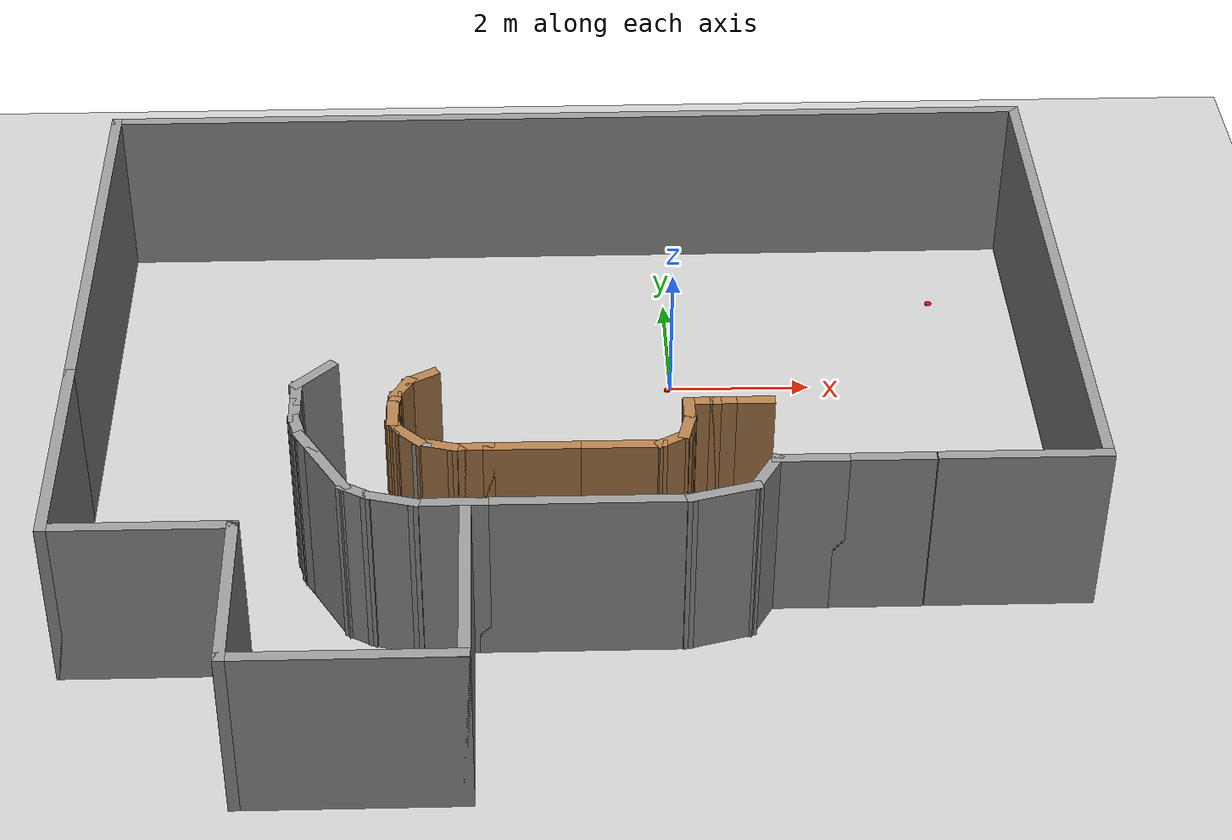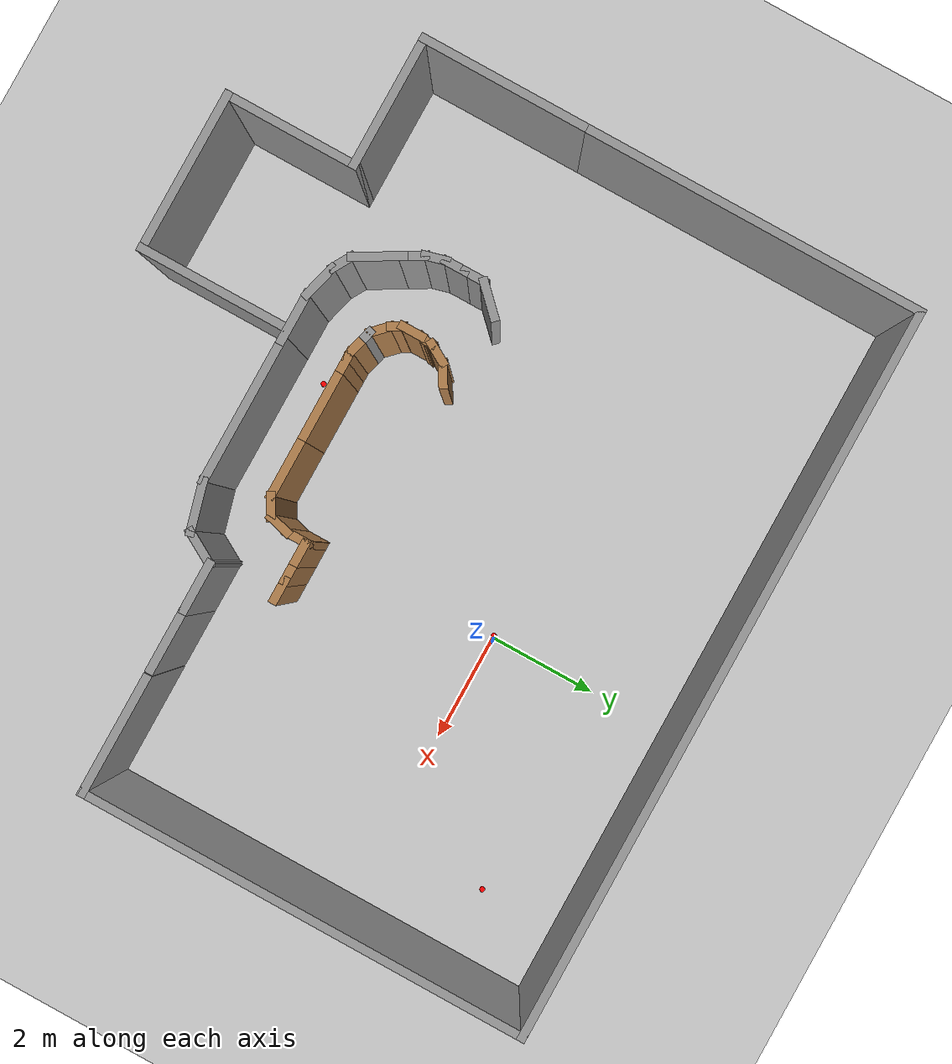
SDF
<sdf version="1.7">
 <world name="jojo_navigation_test_world">
  <physics name="fast" type="ode">
   <real_time_update_rate>1000</real_time_update_rate>
   <max_step_size>0.001</max_step_size>
   <real_time_factor>1</real_time_factor>
  </physics>
  <scene><ambient>0.4 0.4 0.4 1</ambient><shadows>1</shadows><background>0.7 0.7 0.7 1</background></scene>
  <model name="ground_plane">
   <static>1</static>
   <link name="link">
    <collision name="collision">
     <geometry><plane><normal>0 0 1</normal><size>100 100</size></plane></geometry>
     <surface><friction><ode><mu>100</mu><mu2>50</mu2></ode></friction></surface>
    </collision>
    <visual name="visual">
     <cast_shadows>0</cast_shadows>
     <geometry><plane><normal>0 0 1</normal><size>100 100</size></plane></geometry>
     <material>
      <script><uri>file://media/materials/scripts/gazebo.material</uri><name>Gazebo/Grey</name></script>
     </material>
    </visual>
   </link>
  </model>
  <light name="sun" type="directional">
   <pose>0 0 10 0 -0 0</pose>
   <diffuse>0.8 0.8 0.8 1</diffuse>
   <specular>0.2 0.2 0.2 1</specular>
   <attenuation>
    <range>1000</range>
    <constant>0.9</constant>
    <linear>0.01</linear>
    <quadratic>0.001</quadratic>
   </attenuation>
   <direction>-0.5 0.1 -0.9</direction>
   <spot><inner_angle>0</inner_angle><outer_angle>0</outer_angle><falloff>0</falloff></spot>
  </light>
  <model name="goal_point">
   <pose>4 2 -0.013212 0 -0 0</pose>
   <static>1</static>
   <link name="red_dot_link">
    <pose>0 0 0.01 0 -0 0</pose>
    <visual name="red_dot_visual">
     <geometry><cylinder><radius>0.05</radius><length>0.01</length></cylinder></geometry>
     <material><ambient>1 0 0 1</ambient><diffuse>1 0 0 1</diffuse><specular>1 1 1 1</specular></material>
    </visual>
   </link>
  </model>
  <gravity>0 0 -9.8</gravity>
  <magnetic_field>6e-06 2.3e-05 -4.2e-05</magnetic_field>
  <atmosphere type="adiabatic"/>
  <audio><device>default</device></audio>
  <spherical_coordinates>
   <surface_model>EARTH_WGS84</surface_model>
   <latitude_deg>0</latitude_deg>
   <longitude_deg>0</longitude_deg>
   <elevation>0</elevation>
   <heading_deg>0</heading_deg>
  </spherical_coordinates>
  <model name="Untitled">
   <pose>-1.06448 -2.1459 0 0 -0 0</pose>
   <link name="Wall_0">
    <collision name="Wall_0_Collision">
     <geometry><box><size>0.5 0.15 2.5</size></box></geometry>
     <pose>0 0 1.25 0 -0 0</pose>
    </collision>
    <visual name="Wall_0_Visual">
     <pose>0 0 1.25 0 -0 0</pose>
     <geometry><box><size>0.5 0.15 2.5</size></box></geometry>
     <material>
      <script><uri>file://media/materials/scripts/gazebo.material</uri><name>Gazebo/Wood</name></script>
      <ambient>1 1 1 1</ambient>
     </material>
     <meta><layer>0</layer></meta>
    </visual>
    <pose>-2.41044 -0.679086 0 0 -0 -2.61799</pose>
   </link>
   <link name="Wall_1">
    <collision name="Wall_1_Collision">
     <geometry><box><size>0.5 0.15 2.5</size></box></geometry>
     <pose>0 0 1.25 0 -0 0</pose>
    </collision>
    <visual name="Wall_1_Visual">
     <pose>0 0 1.25 0 -0 0</pose>
     <geometry><box><size>0.5 0.15 2.5</size></box></geometry>
     <material>
      <script><uri>file://media/materials/scripts/gazebo.material</uri><name>Gazebo/Wood</name></script>
      <ambient>1 1 1 1</ambient>
     </material>
     <meta><layer>0</layer></meta>
    </visual>
    <pose>-2.64949 -0.91814 0 0 -0 -2.0944</pose>
   </link>
   <link name="Wall_10">
    <collision name="Wall_10_Collision">
     <geometry><box><size>0.25 0.15 2.5</size></box></geometry>
     <pose>0 0 1.25 0 -0 0</pose>
    </collision>
    <visual name="Wall_10_Visual">
     <pose>0 0 1.25 0 -0 0</pose>
     <geometry><box><size>0.25 0.15 2.5</size></box></geometry>
     <material>
      <script><uri>file://media/materials/scripts/gazebo.material</uri><name>Gazebo/Wood</name></script>
      <ambient>1 1 1 1</ambient>
     </material>
     <meta><layer>0</layer></meta>
    </visual>
    <pose>-1.93072 -2.15345 0 0 -0 0</pose>
   </link>
   <link name="Wall_11">
    <collision name="Wall_11_Collision">
     <geometry><box><size>0.5 0.15 2.5</size></box></geometry>
     <pose>0 0 1.25 0 -0 0</pose>
    </collision>
    <visual name="Wall_11_Visual">
     <pose>0 0 1.25 0 -0 0</pose>
     <geometry><box><size>0.5 0.15 2.5</size></box></geometry>
     <material>
      <script><uri>file://media/materials/scripts/gazebo.material</uri><name>Gazebo/Wood</name></script>
      <ambient>1 1 1 1</ambient>
     </material>
     <meta><layer>0</layer></meta>
    </visual>
    <pose>-1.70572 -2.15345 0 0 -0 0</pose>
   </link>
   <link name="Wall_12">
    <collision name="Wall_12_Collision">
     <geometry><box><size>1.25 0.15 2.5</size></box></geometry>
     <pose>0 0 1.25 0 -0 0</pose>
    </collision>
    <visual name="Wall_12_Visual">
     <pose>0 0 1.25 0 -0 0</pose>
     <geometry><box><size>1.25 0.15 2.5</size></box></geometry>
     <material>
      <script><uri>file://media/materials/scripts/gazebo.material</uri><name>Gazebo/Wood</name></script>
      <ambient>1 1 1 1</ambient>
     </material>
     <meta><layer>0</layer></meta>
    </visual>
    <pose>-0.980718 -2.15345 0 0 -0 0</pose>
   </link>
   <link name="Wall_13">
    <collision name="Wall_13_Collision">
     <geometry><box><size>1.25 0.15 2.5</size></box></geometry>
     <pose>0 0 1.25 0 -0 0</pose>
    </collision>
    <visual name="Wall_13_Visual">
     <pose>0 0 1.25 0 -0 0</pose>
     <geometry><box><size>1.25 0.15 2.5</size></box></geometry>
     <material>
      <script><uri>file://media/materials/scripts/gazebo.material</uri><name>Gazebo/Wood</name></script>
      <ambient>1 1 1 1</ambient>
     </material>
     <meta><layer>0</layer></meta>
    </visual>
    <pose>0.119282 -2.15345 0 0 -0 0</pose>
   </link>
   <link name="Wall_14">
    <collision name="Wall_14_Collision">
     <geometry><box><size>0.5 0.15 2.5</size></box></geometry>
     <pose>0 0 1.25 0 -0 0</pose>
    </collision>
    <visual name="Wall_14_Visual">
     <pose>0 0 1.25 0 -0 0</pose>
     <geometry><box><size>0.5 0.15 2.5</size></box></geometry>
     <material>
      <script><uri>file://media/materials/scripts/gazebo.material</uri><name>Gazebo/Wood</name></script>
      <ambient>1 1 1 1</ambient>
     </material>
     <meta><layer>0</layer></meta>
    </visual>
    <pose>0.820836 -2.06595 0 0 -0 0.523599</pose>
   </link>
   <link name="Wall_15">
    <collision name="Wall_15_Collision">
     <geometry><box><size>0.5 0.15 2.5</size></box></geometry>
     <pose>0 0 1.25 0 -0 0</pose>
    </collision>
    <visual name="Wall_15_Visual">
     <pose>0 0 1.25 0 -0 0</pose>
     <geometry><box><size>0.5 0.15 2.5</size></box></geometry>
     <material>
      <script><uri>file://media/materials/scripts/gazebo.material</uri><name>Gazebo/Wood</name></script>
      <ambient>1 1 1 1</ambient>
     </material>
     <meta><layer>0</layer></meta>
    </visual>
    <pose>1.01768 -1.80941 0 0 -0 1.309</pose>
   </link>
   <link name="Wall_16">
    <collision name="Wall_16_Collision">
     <geometry><box><size>0.5 0.15 2.5</size></box></geometry>
     <pose>0 0 1.25 0 -0 0</pose>
    </collision>
    <visual name="Wall_16_Visual">
     <pose>0 0 1.25 0 -0 0</pose>
     <geometry><box><size>0.5 0.15 2.5</size></box></geometry>
     <material>
      <script><uri>file://media/materials/scripts/gazebo.material</uri><name>Gazebo/Wood</name></script>
      <ambient>1 1 1 1</ambient>
     </material>
     <meta><layer>0</layer></meta>
    </visual>
    <pose>1.06298 -1.46537 0 0 -0 1.5708</pose>
   </link>
   <link name="Wall_17">
    <collision name="Wall_17_Collision">
     <geometry><box><size>0.5 0.15 2.5</size></box></geometry>
     <pose>0 0 1.25 0 -0 0</pose>
    </collision>
    <visual name="Wall_17_Visual">
     <pose>0 0 1.25 0 -0 0</pose>
     <geometry><box><size>0.5 0.15 2.5</size></box></geometry>
     <material>
      <script><uri>file://media/materials/scripts/gazebo.material</uri><name>Gazebo/Wood</name></script>
      <ambient>1 1 1 1</ambient>
     </material>
     <meta><layer>0</layer></meta>
    </visual>
    <pose>1.23798 -1.29037 0 0 -0 0</pose>
   </link>
   <link name="Wall_18">
    <collision name="Wall_18_Collision">
     <geometry><box><size>0.5 0.15 2.5</size></box></geometry>
     <pose>0 0 1.25 0 -0 0</pose>
    </collision>
    <visual name="Wall_18_Visual">
     <pose>0 0 1.25 0 -0 0</pose>
     <geometry><box><size>0.5 0.15 2.5</size></box></geometry>
     <material>
      <script><uri>file://media/materials/scripts/gazebo.material</uri><name>Gazebo/Wood</name></script>
      <ambient>1 1 1 1</ambient>
     </material>
     <meta><layer>0</layer></meta>
    </visual>
    <pose>1.58798 -1.29037 0 0 -0 0</pose>
   </link>
   <link name="Wall_19">
    <collision name="Wall_19_Collision">
     <geometry><box><size>0.5 0.15 2.5</size></box></geometry>
     <pose>0 0 1.25 0 -0 0</pose>
    </collision>
    <visual name="Wall_19_Visual">
     <pose>0 0 1.25 0 -0 0</pose>
     <geometry><box><size>0.5 0.15 2.5</size></box></geometry>
     <material>
      <script><uri>file://media/materials/scripts/gazebo.material</uri><name>Gazebo/Wood</name></script>
      <ambient>1 1 1 1</ambient>
     </material>
     <meta><layer>0</layer></meta>
    </visual>
    <pose>1.93798 -1.29037 0 0 -0 0</pose>
   </link>
   <link name="Wall_2">
    <collision name="Wall_2_Collision">
     <geometry><box><size>0.25 0.15 2.5</size></box></geometry>
     <pose>0 0 1.25 0 -0 0</pose>
    </collision>
    <visual name="Wall_2_Visual">
     <pose>0 0 1.25 0 -0 0</pose>
     <geometry><box><size>0.25 0.15 2.5</size></box></geometry>
     <material>
      <script><uri>file://media/materials/scripts/gazebo.material</uri><name>Gazebo/Wood</name></script>
      <ambient>1 1 1 1</ambient>
     </material>
     <meta><layer>0</layer></meta>
    </visual>
    <pose>-2.73699 -1.1197 0 0 -0 -1.5708</pose>
   </link>
   <link name="Wall_28">
    <collision name="Wall_28_Collision">
     <geometry><box><size>0.75 0.15 2.5</size></box></geometry>
     <pose>0 0 1.25 0 -0 0</pose>
    </collision>
    <visual name="Wall_28_Visual">
     <pose>0 0 1.25 0 -0 0</pose>
     <geometry><box><size>0.75 0.15 2.5</size></box></geometry>
     <material>
      <script><uri>file://media/materials/scripts/gazebo.material</uri><name>Gazebo/Grey</name></script>
      <ambient>1 1 1 1</ambient>
     </material>
     <meta><layer>0</layer></meta>
    </visual>
    <pose>-3.81948 -0.60683 0 0 -0 -2.35619</pose>
   </link>
   <link name="Wall_29">
    <collision name="Wall_29_Collision">
     <geometry><box><size>0.5 0.15 2.5</size></box></geometry>
     <pose>0 0 1.25 0 -0 0</pose>
    </collision>
    <visual name="Wall_29_Visual">
     <pose>0 0 1.25 0 -0 0</pose>
     <geometry><box><size>0.5 0.15 2.5</size></box></geometry>
     <material>
      <script><uri>file://media/materials/scripts/gazebo.material</uri><name>Gazebo/Grey</name></script>
      <ambient>1 1 1 1</ambient>
     </material>
     <meta><layer>0</layer></meta>
    </visual>
    <pose>-4.03161 -0.993962 0 0 -0 -1.5708</pose>
   </link>
   <link name="Wall_3">
    <collision name="Wall_3_Collision">
     <geometry><box><size>0.25 0.15 2.5</size></box></geometry>
     <pose>0 0 1.25 0 -0 0</pose>
    </collision>
    <visual name="Wall_3_Visual">
     <pose>0 0 1.25 0 -0 0</pose>
     <geometry><box><size>0.25 0.15 2.5</size></box></geometry>
     <material>
      <script><uri>file://media/materials/scripts/gazebo.material</uri><name>Gazebo/Wood</name></script>
      <ambient>1 1 1 1</ambient>
     </material>
     <meta><layer>0</layer></meta>
    </visual>
    <pose>-2.74993 -1.21799 0 0 -0 -1.8326</pose>
   </link>
   <link name="Wall_30">
    <collision name="Wall_30_Collision">
     <geometry><box><size>0.5 0.15 2.5</size></box></geometry>
     <pose>0 0 1.25 0 -0 0</pose>
    </collision>
    <visual name="Wall_30_Visual">
     <pose>0 0 1.25 0 -0 0</pose>
     <geometry><box><size>0.5 0.15 2.5</size></box></geometry>
     <material>
      <script><uri>file://media/materials/scripts/gazebo.material</uri><name>Gazebo/Grey</name></script>
      <ambient>1 1 1 1</ambient>
     </material>
     <meta><layer>0</layer></meta>
    </visual>
    <pose>-4.03161 -1.34396 0 0 -0 -1.5708</pose>
   </link>
   <link name="Wall_31">
    <collision name="Wall_31_Collision">
     <geometry><box><size>0.5 0.15 2.5</size></box></geometry>
     <pose>0 0 1.25 0 -0 0</pose>
    </collision>
    <visual name="Wall_31_Visual">
     <pose>0 0 1.25 0 -0 0</pose>
     <geometry><box><size>0.5 0.15 2.5</size></box></geometry>
     <material>
      <script><uri>file://media/materials/scripts/gazebo.material</uri><name>Gazebo/Grey</name></script>
      <ambient>1 1 1 1</ambient>
     </material>
     <meta><layer>0</layer></meta>
    </visual>
    <pose>-3.98632 -1.688 0 0 -0 -1.309</pose>
   </link>
   <link name="Wall_32">
    <collision name="Wall_32_Collision">
     <geometry><box><size>0.5 0.15 2.5</size></box></geometry>
     <pose>0 0 1.25 0 -0 0</pose>
    </collision>
    <visual name="Wall_32_Visual">
     <pose>0 0 1.25 0 -0 0</pose>
     <geometry><box><size>0.5 0.15 2.5</size></box></geometry>
     <material>
      <script><uri>file://media/materials/scripts/gazebo.material</uri><name>Gazebo/Grey</name></script>
      <ambient>1 1 1 1</ambient>
     </material>
     <meta><layer>0</layer></meta>
    </visual>
    <pose>-3.85352 -2.00859 0 0 -0 -1.0472</pose>
   </link>
   <link name="Wall_36">
    <collision name="Wall_36_Collision">
     <geometry><box><size>1 0.15 2.5</size></box></geometry>
     <pose>0 0 1.25 0 -0 0</pose>
    </collision>
    <visual name="Wall_36_Visual">
     <pose>0 0 1.25 0 -0 0</pose>
     <geometry><box><size>1 0.15 2.5</size></box></geometry>
     <material>
      <script><uri>file://media/materials/scripts/gazebo.material</uri><name>Gazebo/Grey</name></script>
      <ambient>1 1 1 1</ambient>
     </material>
     <meta><layer>0</layer></meta>
    </visual>
    <pose>-3.55352 -2.52821 0 0 -0 -1.0472</pose>
   </link>
   <link name="Wall_37">
    <collision name="Wall_37_Collision">
     <geometry><box><size>0.5 0.15 2.5</size></box></geometry>
     <pose>0 0 1.25 0 -0 0</pose>
    </collision>
    <visual name="Wall_37_Visual">
     <pose>0 0 1.25 0 -0 0</pose>
     <geometry><box><size>0.5 0.15 2.5</size></box></geometry>
     <material>
      <script><uri>file://media/materials/scripts/gazebo.material</uri><name>Gazebo/Grey</name></script>
      <ambient>1 1 1 1</ambient>
     </material>
     <meta><layer>0</layer></meta>
    </visual>
    <pose>-3.18947 -2.98377 0 0 -0 -0.523599</pose>
   </link>
   <link name="Wall_38">
    <collision name="Wall_38_Collision">
     <geometry><box><size>0.75 0.15 2.5</size></box></geometry>
     <pose>0 0 1.25 0 -0 0</pose>
    </collision>
    <visual name="Wall_38_Visual">
     <pose>0 0 1.25 0 -0 0</pose>
     <geometry><box><size>0.75 0.15 2.5</size></box></geometry>
     <material>
      <script><uri>file://media/materials/scripts/gazebo.material</uri><name>Gazebo/Grey</name></script>
      <ambient>1 1 1 1</ambient>
     </material>
     <meta><layer>0</layer></meta>
    </visual>
    <pose>-2.74814 -3.14891 0 0 -0 -0.261799</pose>
   </link>
   <link name="Wall_39">
    <collision name="Wall_39_Collision">
     <geometry><box><size>1 0.15 2.5</size></box></geometry>
     <pose>0 0 1.25 0 -0 0</pose>
    </collision>
    <visual name="Wall_39_Visual">
     <pose>0 0 1.25 0 -0 0</pose>
     <geometry><box><size>1 0.15 2.5</size></box></geometry>
     <material>
      <script><uri>file://media/materials/scripts/gazebo.material</uri><name>Gazebo/Grey</name></script>
      <ambient>1 1 1 1</ambient>
     </material>
     <meta><layer>0</layer></meta>
    </visual>
    <pose>-2.03336 -3.22656 0 0 -0 0</pose>
   </link>
   <link name="Wall_4">
    <collision name="Wall_4_Collision">
     <geometry><box><size>0.5 0.15 2.5</size></box></geometry>
     <pose>0 0 1.25 0 -0 0</pose>
    </collision>
    <visual name="Wall_4_Visual">
     <pose>0 0 1.25 0 -0 0</pose>
     <geometry><box><size>0.5 0.15 2.5</size></box></geometry>
     <material>
      <script><uri>file://media/materials/scripts/gazebo.material</uri><name>Gazebo/Wood</name></script>
      <ambient>1 1 1 1</ambient>
     </material>
     <meta><layer>0</layer></meta>
    </visual>
    <pose>-2.76287 -1.44129 0 0 -0 -1.5708</pose>
   </link>
   <link name="Wall_40">
    <collision name="Wall_40_Collision">
     <geometry><box><size>2.75 0.15 2.5</size></box></geometry>
     <pose>0 0 1.25 0 -0 0</pose>
    </collision>
    <visual name="Wall_40_Visual">
     <pose>0 0 1.25 0 -0 0</pose>
     <geometry><box><size>2.75 0.15 2.5</size></box></geometry>
     <material>
      <script><uri>file://media/materials/scripts/gazebo.material</uri><name>Gazebo/Grey</name></script>
      <ambient>1 1 1 1</ambient>
     </material>
     <meta><layer>0</layer></meta>
    </visual>
    <pose>-0.30836 -3.22656 0 0 -0 0</pose>
   </link>
   <link name="Wall_41">
    <collision name="Wall_41_Collision">
     <geometry><box><size>1 0.15 2.5</size></box></geometry>
     <pose>0 0 1.25 0 -0 0</pose>
    </collision>
    <visual name="Wall_41_Visual">
     <pose>0 0 1.25 0 -0 0</pose>
     <geometry><box><size>1 0.15 2.5</size></box></geometry>
     <material>
      <script><uri>file://media/materials/scripts/gazebo.material</uri><name>Gazebo/Grey</name></script>
      <ambient>1 1 1 1</ambient>
     </material>
     <meta><layer>0</layer></meta>
    </visual>
    <pose>1.40216 -3.11656 0 0 -0 0.261799</pose>
   </link>
   <link name="Wall_42">
    <collision name="Wall_42_Collision">
     <geometry><box><size>0.75 0.15 2.5</size></box></geometry>
     <pose>0 0 1.25 0 -0 0</pose>
    </collision>
    <visual name="Wall_42_Visual">
     <pose>0 0 1.25 0 -0 0</pose>
     <geometry><box><size>0.75 0.15 2.5</size></box></geometry>
     <material>
      <script><uri>file://media/materials/scripts/gazebo.material</uri><name>Gazebo/Grey</name></script>
      <ambient>1 1 1 1</ambient>
     </material>
     <meta><layer>0</layer></meta>
    </visual>
    <pose>1.96268 -2.74675 0 0 -0 1.0472</pose>
   </link>
   <link name="Wall_43">
    <collision name="Wall_43_Collision">
     <geometry><box><size>1 0.15 2.5</size></box></geometry>
     <pose>0 0 1.25 0 -0 0</pose>
    </collision>
    <visual name="Wall_43_Visual">
     <pose>0 0 1.25 0 -0 0</pose>
     <geometry><box><size>1 0.15 2.5</size></box></geometry>
     <material>
      <script><uri>file://media/materials/scripts/gazebo.material</uri><name>Gazebo/Grey</name></script>
      <ambient>1 1 1 1</ambient>
     </material>
     <meta><layer>0</layer></meta>
    </visual>
    <pose>2.53768 -2.48695 0 0 -0 0</pose>
   </link>
   <link name="Wall_44">
    <collision name="Wall_44_Collision">
     <geometry><box><size>1.25 0.15 2.5</size></box></geometry>
     <pose>0 0 1.25 0 -0 0</pose>
    </collision>
    <visual name="Wall_44_Visual">
     <pose>0 0 1.25 0 -0 0</pose>
     <geometry><box><size>1.25 0.15 2.5</size></box></geometry>
     <material>
      <script><uri>file://media/materials/scripts/gazebo.material</uri><name>Gazebo/Grey</name></script>
      <ambient>1 1 1 1</ambient>
     </material>
     <meta><layer>0</layer></meta>
    </visual>
    <pose>3.51268 -2.48695 0 0 -0 0</pose>
   </link>
   <link name="Wall_5">
    <collision name="Wall_5_Collision">
     <geometry><box><size>0.25 0.15 2.5</size></box></geometry>
     <pose>0 0 1.25 0 -0 0</pose>
    </collision>
    <visual name="Wall_5_Visual">
     <pose>0 0 1.25 0 -0 0</pose>
     <geometry><box><size>0.25 0.15 2.5</size></box></geometry>
     <material>
      <script><uri>file://media/materials/scripts/gazebo.material</uri><name>Gazebo/Wood</name></script>
      <ambient>1 1 1 1</ambient>
     </material>
     <meta><layer>0</layer></meta>
    </visual>
    <pose>-2.73787 -1.65959 0 0 -0 -1.0472</pose>
   </link>
   <link name="Wall_6">
    <collision name="Wall_6_Collision">
     <geometry><box><size>0.25 0.15 2.5</size></box></geometry>
     <pose>0 0 1.25 0 -0 0</pose>
    </collision>
    <visual name="Wall_6_Visual">
     <pose>0 0 1.25 0 -0 0</pose>
     <geometry><box><size>0.25 0.15 2.5</size></box></geometry>
     <material>
      <script><uri>file://media/materials/scripts/gazebo.material</uri><name>Gazebo/Wood</name></script>
      <ambient>1 1 1 1</ambient>
     </material>
     <meta><layer>0</layer></meta>
    </visual>
    <pose>-2.68787 -1.74619 0 0 -0 -1.0472</pose>
   </link>
   <link name="Wall_7">
    <collision name="Wall_7_Collision">
     <geometry><box><size>0.5 0.15 2.5</size></box></geometry>
     <pose>0 0 1.25 0 -0 0</pose>
    </collision>
    <visual name="Wall_7_Visual">
     <pose>0 0 1.25 0 -0 0</pose>
     <geometry><box><size>0.5 0.15 2.5</size></box></geometry>
     <material>
      <script><uri>file://media/materials/scripts/gazebo.material</uri><name>Gazebo/Wood</name></script>
      <ambient>1 1 1 1</ambient>
     </material>
     <meta><layer>0</layer></meta>
    </visual>
    <pose>-2.53913 -1.91324 0 0 -0 -0.785398</pose>
   </link>
   <link name="Wall_8">
    <collision name="Wall_8_Collision">
     <geometry><box><size>0.25 0.15 2.5</size></box></geometry>
     <pose>0 0 1.25 0 -0 0</pose>
    </collision>
    <visual name="Wall_8_Visual">
     <pose>0 0 1.25 0 -0 0</pose>
     <geometry><box><size>0.25 0.15 2.5</size></box></geometry>
     <material>
      <script><uri>file://media/materials/scripts/gazebo.material</uri><name>Gazebo/Grey</name></script>
      <ambient>1 1 1 1</ambient>
     </material>
     <meta><layer>0</layer></meta>
    </visual>
    <pose>-2.36709 -2.04992 0 0 -0 -0.261799</pose>
   </link>
   <link name="Wall_9">
    <collision name="Wall_9_Collision">
     <geometry><box><size>0.5 0.15 2.5</size></box></geometry>
     <pose>0 0 1.25 0 -0 0</pose>
    </collision>
    <visual name="Wall_9_Visual">
     <pose>0 0 1.25 0 -0 0</pose>
     <geometry><box><size>0.5 0.15 2.5</size></box></geometry>
     <material>
      <script><uri>file://media/materials/scripts/gazebo.material</uri><name>Gazebo/Wood</name></script>
      <ambient>1 1 1 1</ambient>
     </material>
     <meta><layer>0</layer></meta>
    </visual>
    <pose>-2.14975 -2.10816 0 0 -0 -0.261799</pose>
   </link>
   <static>1</static>
  </model>
  <model name="Untitled_0">
   <pose>-1.41391 -2.3046 0 0 -0 0</pose>
   <link name="Wall_58">
    <collision name="Wall_58_Collision">
     <geometry><box><size>3.25 0.15 2.5</size></box></geometry>
     <pose>0 0 1.25 0 -0 0</pose>
    </collision>
    <visual name="Wall_58_Visual">
     <pose>0 0 1.25 0 -0 0</pose>
     <geometry><box><size>3.25 0.15 2.5</size></box></geometry>
     <material>
      <script><uri>file://media/materials/scripts/gazebo.material</uri><name>Gazebo/Grey</name></script>
      <ambient>1 1 1 1</ambient>
     </material>
     <meta><layer>0</layer></meta>
    </visual>
    <pose>-6.675 -1.875 0 0 -0 1.5708</pose>
   </link>
   <link name="Wall_59">
    <collision name="Wall_59_Collision">
     <geometry><box><size>6.25 0.15 2.5</size></box></geometry>
     <pose>0 0 1.25 0 -0 0</pose>
    </collision>
    <visual name="Wall_59_Visual">
     <pose>0 0 1.25 0 -0 0</pose>
     <geometry><box><size>6.25 0.15 2.5</size></box></geometry>
     <material>
      <script><uri>file://media/materials/scripts/gazebo.material</uri><name>Gazebo/Grey</name></script>
      <ambient>1 1 1 1</ambient>
     </material>
     <meta><layer>0</layer></meta>
    </visual>
    <pose>-6.675 2.725 0 0 -0 1.5708</pose>
   </link>
   <link name="Wall_60">
    <collision name="Wall_60_Collision">
     <geometry><box><size>13.5 0.15 2.5</size></box></geometry>
     <pose>0 0 1.25 0 -0 0</pose>
    </collision>
    <visual name="Wall_60_Visual">
     <pose>0 0 1.25 0 -0 0</pose>
     <geometry><box><size>13.5 0.15 2.5</size></box></geometry>
     <material>
      <script><uri>file://media/materials/scripts/gazebo.material</uri><name>Gazebo/Grey</name></script>
      <ambient>1 1 1 1</ambient>
     </material>
     <meta><layer>0</layer></meta>
    </visual>
    <pose>0 5.775 0 0 -0 0</pose>
   </link>
   <link name="Wall_61">
    <collision name="Wall_61_Collision">
     <geometry><box><size>8.25 0.15 2.5</size></box></geometry>
     <pose>0 0 1.25 0 -0 0</pose>
    </collision>
    <visual name="Wall_61_Visual">
     <pose>0 0 1.25 0 -0 0</pose>
     <geometry><box><size>8.25 0.15 2.5</size></box></geometry>
     <material>
      <script><uri>file://media/materials/scripts/gazebo.material</uri><name>Gazebo/Grey</name></script>
      <ambient>1 1 1 1</ambient>
     </material>
     <meta><layer>0</layer></meta>
    </visual>
    <pose>6.675 1.725 0 0 -0 -1.5708</pose>
   </link>
   <link name="Wall_62">
    <collision name="Wall_62_Collision">
     <geometry><box><size>2.25 0.15 2.5</size></box></geometry>
     <pose>0 0 1.25 0 -0 0</pose>
    </collision>
    <visual name="Wall_62_Visual">
     <pose>0 0 1.25 0 -0 0</pose>
     <geometry><box><size>2.25 0.15 2.5</size></box></geometry>
     <material>
      <script><uri>file://media/materials/scripts/gazebo.material</uri><name>Gazebo/Grey</name></script>
      <ambient>1 1 1 1</ambient>
     </material>
     <meta><layer>0</layer></meta>
    </visual>
    <pose>5.625 -2.325 0 0 -0 3.14159</pose>
   </link>
   <link name="Wall_64">
    <collision name="Wall_64_Collision">
     <geometry><box><size>2.5 0.15 2.5</size></box></geometry>
     <pose>0 0 1.25 0 -0 0</pose>
    </collision>
    <visual name="Wall_64_Visual">
     <pose>0 0 1.25 0 -0 0</pose>
     <geometry><box><size>2.5 0.15 2.5</size></box></geometry>
     <material>
      <script><uri>file://media/materials/scripts/gazebo.material</uri><name>Gazebo/Grey</name></script>
      <ambient>1 1 1 1</ambient>
     </material>
     <meta><layer>0</layer></meta>
    </visual>
    <pose>-5.5 -3.425 0 0 -0 0</pose>
   </link>
   <link name="Wall_65">
    <collision name="Wall_65_Collision">
     <geometry><box><size>2.5 0.15 2.5</size></box></geometry>
     <pose>0 0 1.25 0 -0 0</pose>
    </collision>
    <visual name="Wall_65_Visual">
     <pose>0 0 1.25 0 -0 0</pose>
     <geometry><box><size>2.5 0.15 2.5</size></box></geometry>
     <material>
      <script><uri>file://media/materials/scripts/gazebo.material</uri><name>Gazebo/Grey</name></script>
      <ambient>1 1 1 1</ambient>
     </material>
     <meta><layer>0</layer></meta>
    </visual>
    <pose>-4.325 -4.6 0 0 -0 -1.5708</pose>
   </link>
   <link name="Wall_66">
    <collision name="Wall_66_Collision">
     <geometry><box><size>3 0.15 2.5</size></box></geometry>
     <pose>0 0 1.25 0 -0 0</pose>
    </collision>
    <visual name="Wall_66_Visual">
     <pose>0 0 1.25 0 -0 0</pose>
     <geometry><box><size>3 0.15 2.5</size></box></geometry>
     <material>
      <script><uri>file://media/materials/scripts/gazebo.material</uri><name>Gazebo/Grey</name></script>
      <ambient>1 1 1 1</ambient>
     </material>
     <meta><layer>0</layer></meta>
    </visual>
    <pose>-2.9 -5.775 0 0 -0 0</pose>
   </link>
   <link name="Wall_67">
    <collision name="Wall_67_Collision">
     <geometry><box><size>2.75 0.15 2.5</size></box></geometry>
     <pose>0 0 1.25 0 -0 0</pose>
    </collision>
    <visual name="Wall_67_Visual">
     <pose>0 0 1.25 0 -0 0</pose>
     <geometry><box><size>2.75 0.15 2.5</size></box></geometry>
     <material>
      <script><uri>file://media/materials/scripts/gazebo.material</uri><name>Gazebo/Grey</name></script>
      <ambient>1 1 1 1</ambient>
     </material>
     <meta><layer>0</layer></meta>
    </visual>
    <pose>-1.475 -4.475 0 0 -0 1.5708</pose>
   </link>
   <static>1</static>
  </model>
  <model name="goal_point_clone">
   <pose>-0.038523 -0.001907 -0.013974 0 -0 0</pose>
   <static>1</static>
   <link name="red_dot_link">
    <pose>0 0 0.01 0 -0 0</pose>
    <visual name="red_dot_visual">
     <geometry><cylinder><radius>0.05</radius><length>0.01</length></cylinder></geometry>
     <material><ambient>1 0 0 1</ambient><diffuse>1 0 0 1</diffuse><specular>1 1 1 1</specular></material>
    </visual>
   </link>
  </model>
  <model name="goal_point_clone_clone">
   <pose>-2.50079 -4.83548 -0.012719 0 -0 0</pose>
   <static>1</static>
   <link name="red_dot_link">
    <pose>0 0 0.01 0 -0 0</pose>
    <visual name="red_dot_visual">
     <geometry><cylinder><radius>0.05</radius><length>0.01</length></cylinder></geometry>
     <material><ambient>1 0 0 1</ambient><diffuse>1 0 0 1</diffuse><specular>1 1 1 1</specular></material>
    </visual>
   </link>
  </model>
 </world>
</sdf>
